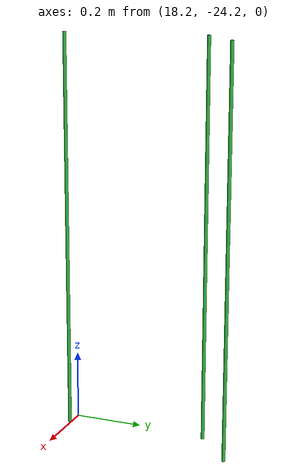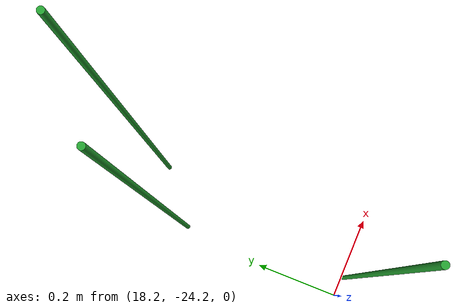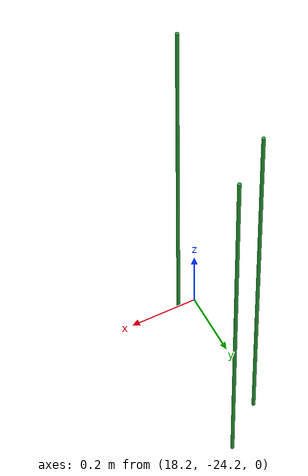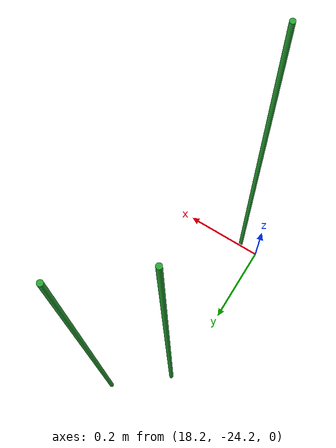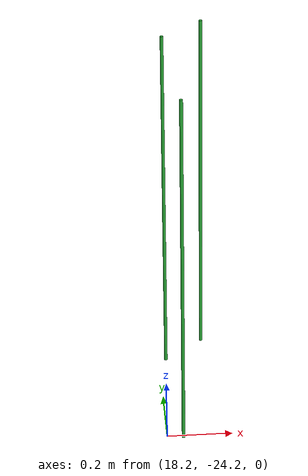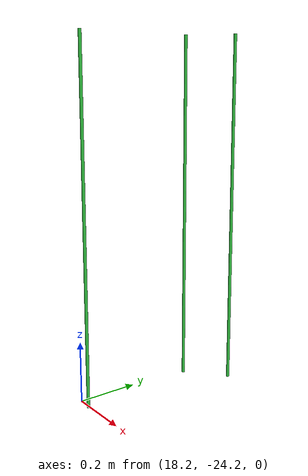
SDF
<sdf version="1.6">
 <world name="default">
  <model name="pole_27_clone_clone_218">
   <link name="link">
    <inertial>
     <mass>1</mass>
     <inertia><ixx>1</ixx><ixy>0</ixy><ixz>0</ixz><iyy>1</iyy><iyz>0</iyz><izz>1</izz></inertia>
    </inertial>
    <visual name="visual">
     <geometry><cylinder><length>1.15</length><radius>0.005</radius></cylinder></geometry>
     <material>
      <script><uri>file://media/materials/scripts/gazebo.material</uri><name>Gazebo/Green</name></script>
      <shader type="vertex"><normal_map>__default__</normal_map></shader>
      <emissive>0 0.1 0 1</emissive>
      <specular>0 0.01 0 1</specular>
      <ambient>0 0.5 0 1</ambient>
      <diffuse>0 0.05 0 1</diffuse>
     </material>
    </visual>
    <collision name="collision">
     <geometry><cylinder><radius>0.005</radius><length>1.15</length></cylinder></geometry>
     <surface>
      <friction>
       <ode><mu>1</mu><mu2>1</mu2><fdir1>0 0 0</fdir1><slip1>0</slip1><slip2>0</slip2></ode>
       <torsional>
        <coefficient>1</coefficient>
        <patch_radius>0</patch_radius>
        <surface_radius>0</surface_radius>
        <use_patch_radius>1</use_patch_radius>
        <ode><slip>0</slip></ode>
       </torsional>
      </friction>
      <bounce><restitution_coefficient>0</restitution_coefficient><threshold>1e+06</threshold></bounce>
      <contact>
       <collide_without_contact>0</collide_without_contact>
       <collide_without_contact_bitmask>1</collide_without_contact_bitmask>
       <collide_bitmask>1</collide_bitmask>
       <ode>
        <soft_cfm>0</soft_cfm>
        <soft_erp>0.2</soft_erp>
        <kp>1e+13</kp>
        <kd>1</kd>
        <max_vel>0.01</max_vel>
        <min_depth>0</min_depth>
       </ode>
       <bullet>
        <split_impulse>1</split_impulse>
        <split_impulse_penetration_threshold>-0.01</split_impulse_penetration_threshold>
        <soft_cfm>0</soft_cfm>
        <soft_erp>0.2</soft_erp>
        <kp>1e+13</kp>
        <kd>1</kd>
       </bullet>
      </contact>
     </surface>
    </collision>
   </link>
   <static>1</static>
   <pose>18.2496 -24.2052 0.575 0 -0 0</pose>
  </model>
  <model name="pole_27_clone_clone_220">
   <link name="link">
    <inertial>
     <mass>1</mass>
     <inertia><ixx>1</ixx><ixy>0</ixy><ixz>0</ixz><iyy>1</iyy><iyz>0</iyz><izz>1</izz></inertia>
    </inertial>
    <visual name="visual">
     <geometry><cylinder><length>1.15</length><radius>0.005</radius></cylinder></geometry>
     <material>
      <script><uri>file://media/materials/scripts/gazebo.material</uri><name>Gazebo/Green</name></script>
      <shader type="vertex"><normal_map>__default__</normal_map></shader>
      <emissive>0 0.1 0 1</emissive>
      <specular>0 0.01 0 1</specular>
      <ambient>0 0.5 0 1</ambient>
      <diffuse>0 0.05 0 1</diffuse>
     </material>
    </visual>
    <collision name="collision">
     <geometry><cylinder><radius>0.005</radius><length>1.15</length></cylinder></geometry>
     <surface>
      <friction>
       <ode><mu>1</mu><mu2>1</mu2><fdir1>0 0 0</fdir1><slip1>0</slip1><slip2>0</slip2></ode>
       <torsional>
        <coefficient>1</coefficient>
        <patch_radius>0</patch_radius>
        <surface_radius>0</surface_radius>
        <use_patch_radius>1</use_patch_radius>
        <ode><slip>0</slip></ode>
       </torsional>
      </friction>
      <bounce><restitution_coefficient>0</restitution_coefficient><threshold>1e+06</threshold></bounce>
      <contact>
       <collide_without_contact>0</collide_without_contact>
       <collide_without_contact_bitmask>1</collide_without_contact_bitmask>
       <collide_bitmask>1</collide_bitmask>
       <ode>
        <soft_cfm>0</soft_cfm>
        <soft_erp>0.2</soft_erp>
        <kp>1e+13</kp>
        <kd>1</kd>
        <max_vel>0.01</max_vel>
        <min_depth>0</min_depth>
       </ode>
       <bullet>
        <split_impulse>1</split_impulse>
        <split_impulse_penetration_threshold>-0.01</split_impulse_penetration_threshold>
        <soft_cfm>0</soft_cfm>
        <soft_erp>0.2</soft_erp>
        <kp>1e+13</kp>
        <kd>1</kd>
       </bullet>
      </contact>
     </surface>
    </collision>
   </link>
   <static>1</static>
   <pose>18.2216 -23.798 0.575 0 -0 0</pose>
  </model>
  <model name="pole_27_clone_clone_221">
   <link name="link">
    <inertial>
     <mass>1</mass>
     <inertia><ixx>1</ixx><ixy>0</ixy><ixz>0</ixz><iyy>1</iyy><iyz>0</iyz><izz>1</izz></inertia>
    </inertial>
    <visual name="visual">
     <geometry><cylinder><length>1.15</length><radius>0.005</radius></cylinder></geometry>
     <material>
      <script><uri>file://media/materials/scripts/gazebo.material</uri><name>Gazebo/Green</name></script>
      <shader type="vertex"><normal_map>__default__</normal_map></shader>
      <emissive>0 0.1 0 1</emissive>
      <specular>0 0.01 0 1</specular>
      <ambient>0 0.5 0 1</ambient>
      <diffuse>0 0.05 0 1</diffuse>
     </material>
    </visual>
    <collision name="collision">
     <geometry><cylinder><radius>0.005</radius><length>1.15</length></cylinder></geometry>
     <surface>
      <friction>
       <ode><mu>1</mu><mu2>1</mu2><fdir1>0 0 0</fdir1><slip1>0</slip1><slip2>0</slip2></ode>
       <torsional>
        <coefficient>1</coefficient>
        <patch_radius>0</patch_radius>
        <surface_radius>0</surface_radius>
        <use_patch_radius>1</use_patch_radius>
        <ode><slip>0</slip></ode>
       </torsional>
      </friction>
      <bounce><restitution_coefficient>0</restitution_coefficient><threshold>1e+06</threshold></bounce>
      <contact>
       <collide_without_contact>0</collide_without_contact>
       <collide_without_contact_bitmask>1</collide_without_contact_bitmask>
       <collide_bitmask>1</collide_bitmask>
       <ode>
        <soft_cfm>0</soft_cfm>
        <soft_erp>0.2</soft_erp>
        <kp>1e+13</kp>
        <kd>1</kd>
        <max_vel>0.01</max_vel>
        <min_depth>0</min_depth>
       </ode>
       <bullet>
        <split_impulse>1</split_impulse>
        <split_impulse_penetration_threshold>-0.01</split_impulse_penetration_threshold>
        <soft_cfm>0</soft_cfm>
        <soft_erp>0.2</soft_erp>
        <kp>1e+13</kp>
        <kd>1</kd>
       </bullet>
      </contact>
     </surface>
    </collision>
   </link>
   <static>1</static>
   <pose>18.3427 -23.6971 0.575 0 -0 0</pose>
  </model>
 </world>
</sdf>
